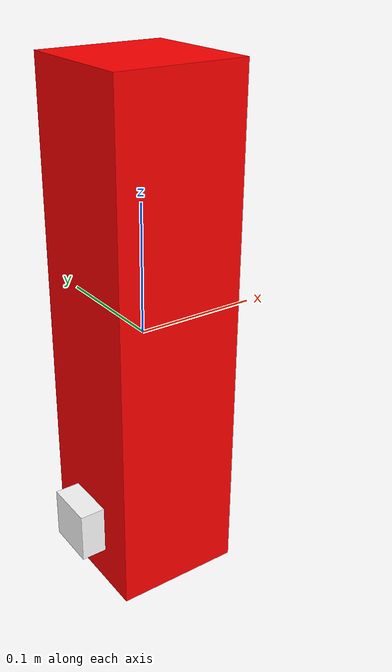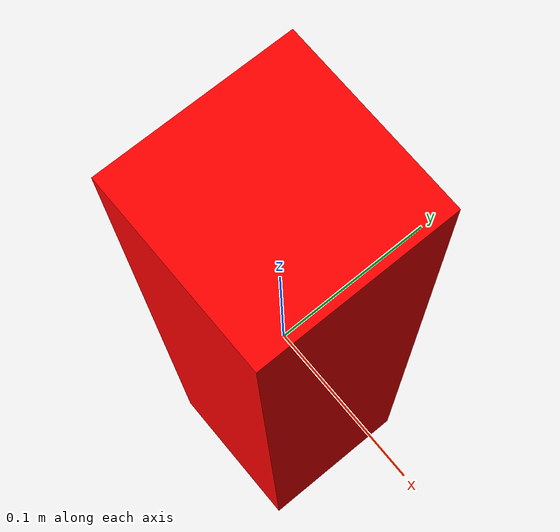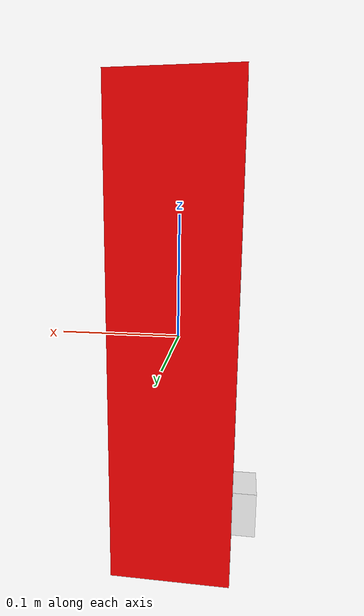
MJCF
<?xml version="1.0" encoding="utf-8"?>
<mujoco model="object_genesis">
    <worldbody>
        <!-- NOTE: geom size is the HALF-SIZE of the box in meters -->
        <!-- So the box's dimensions are: (w:x, l:y, h:z) = (0.1, 0.1, 0.3) -->
        <!-- And the box starts at z = 0.2 - 0.15 = 0.05 -->
        <body name="payload" pos="0 0 0"> <!-- was 0.62 0 0.2 -->
            <joint type="free" damping="0.01"></joint>

            <inertial mass="0.600" pos="0 0 -0.01219" diaginertia="0.006083536 0.006083536 0.00185977"/>
            <!-- mass 0.663 kg -->

            <geom name="payload" type="box" size="0.05 0.05 0.2" friction="0.1 0.1 0.0001"
                solref="0.0001 1.0" rgba="1 0 0 1"/>

            <site name="site:payload" pos="0 0 0" size="0.02 0.02 0.02" type="box" rgba="1 1 1 0"></site>
            <site name="site:obj_frame" pos="-0.05 0.0 -0.15" size="0.02 0.02 0.02" type="box" rgba="1 1 1 1"></site>
        </body>
    </worldbody>
</mujoco>
